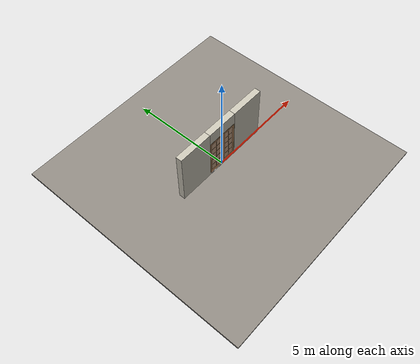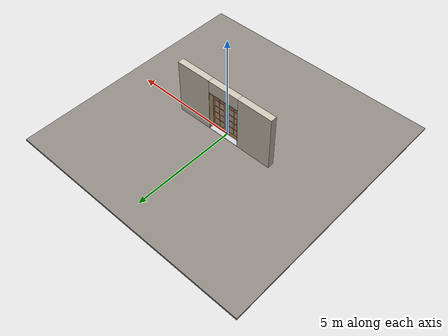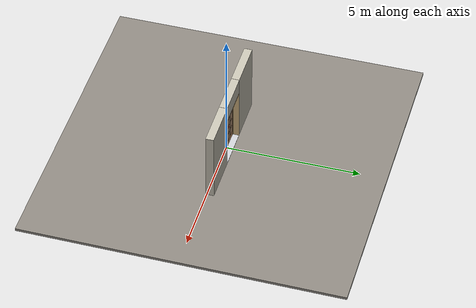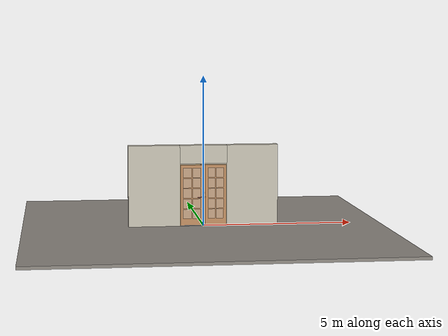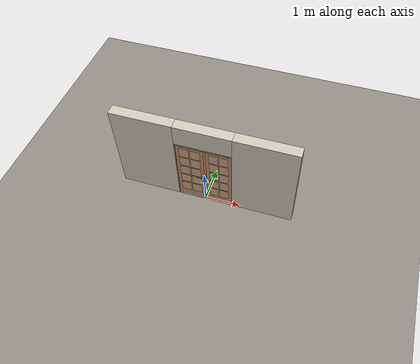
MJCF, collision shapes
<?xml version="1.0" ?>
<mujoco model="db0534_swing_double_full">
  <compiler angle="radian" meshdir="../../hardware" texturedir="../../textures" autolimits="true" inertiafromgeom="false"/>
  <option timestep="0.002" integrator="implicitfast" cone="elliptic" impratio="10" noslip_iterations="3">
    <flag multiccd="enable"/>
  </option>
  <size memory="16M"/>
  <default>
    <geom condim="4" solref="0.005 1" solimp="0.95 0.99 0.001"/>
    <joint solreflimit="0.005 1" solimplimit="0.95 0.99 0.001"/>
    <tendon solreflimit="0.005 1"/>
    <equality solref="0.002 1"/>
  </default>
  <visual>
    <headlight ambient="0.4 0.4 0.4" diffuse="0.7 0.7 0.7" specular="0.2 0.2 0.2"/>
    <quality shadowsize="4096"/>
    <map znear="0.01" zfar="60"/>
  </visual>
  <asset>
    <mesh name="hinge_e22b26c0c1" file="hinge_e22b26c0c1.obj"/>
    <mesh name="hinge_jamb_e1d088f8dc" file="hinge_jamb_e1d088f8dc.obj"/>
    <mesh name="lever_9f02b544cf" file="lever_9f02b544cf.obj"/>
    <material name="mat_floor" rgba="0.55 0.53 0.5 1" specular="0.2" shininess="0.15" reflectance="0"/>
    <material name="mat_wall" rgba="0.78 0.76 0.7 1" specular="0.2" shininess="0.1" reflectance="0"/>
    <material name="mat_leaf_a" rgba="0.75 0.55 0.38 1" specular="0.2" shininess="0.45" reflectance="0"/>
    <material name="mat_glass" rgba="0.85 0.92 0.95 0.25" specular="0.2" shininess="0.95" reflectance="0.1"/>
    <material name="mat_hinge" rgba="0.65 0.66 0.68 1" specular="0.74" shininess="0.5" reflectance="0.36"/>
    <material name="mat_op_nickel_satin" rgba="0.72 0.7 0.66 1" specular="0.8" shininess="0.65" reflectance="0.4"/>
    <material name="mat_trim" rgba="0.85 0.66 0.3 1" specular="0.8" shininess="0.75" reflectance="0.4"/>
    <material name="mat_bolt" rgba="0.85 0.66 0.3 1" specular="0.8" shininess="0.75" reflectance="0.4"/>
    <material name="mat_deadbolt" rgba="0.85 0.66 0.3 1" specular="0.8" shininess="0.75" reflectance="0.4"/>
    <material name="mat_leaf_b" rgba="0.75 0.55 0.38 1" specular="0.2" shininess="0.45" reflectance="0"/>
    <material name="mat_frame" rgba="0.82 0.7 0.5 1" specular="0.2" shininess="0.45" reflectance="0"/>
    <material name="mat_threshold" rgba="0.8 0.81 0.83 1" specular="0.8" shininess="0.6" reflectance="0.4"/>
    <texture name="skybox" type="skybox" builtin="gradient" rgb1="0.6 0.7 0.85" rgb2="0.9 0.92 0.95" width="256" height="256"/>
  </asset>
  <worldbody>
    <light name="sun" pos="1.5 -2.5 4" dir="-0.3 0.5 -0.8" directional="true" diffuse="0.8 0.8 0.8" specular="0.3 0.3 0.3" castshadow="true"/>
    <light name="fill" pos="-1.5 2.5 3" dir="0.3 -0.5 -0.7" directional="true" diffuse="0.35 0.35 0.4" castshadow="false"/>
    <camera name="robot_view" pos="0 -2.434187 1.734312" xyaxes="1 0 0 0 0.26963 0.962964" fovy="52"/>
    <camera name="far_view" pos="0 2.650187 1.734312" xyaxes="-1 0 0 0 -0.26963 0.962964" fovy="52"/>
    <camera name="iso" pos="-1.932062 -2.027438 2.141063" xyaxes="0.741536 -0.670913 0 0.242917 0.268487 0.932151" fovy="46"/>
    <camera name="detail_handle" pos="0.0085 -0.877 1.245" xyaxes="0.97561 0.219512 0 -0.070934 0.315262 0.94635" fovy="38"/>
    <geom name="floor" type="box" size="6 6 0.05" pos="0 0 -0.05" material="mat_floor" group="0" contype="1" conaffinity="1" friction="0.8 0.005 0.0001" density="2400"/>
    <geom name="wall_left" type="box" size="0.85725 0.15 1.35" pos="-1.64275 0.108 1.35" material="mat_wall" group="0" contype="1" conaffinity="1" friction="0.6 0.005 0.0001" density="800"/>
    <geom name="wall_right" type="box" size="0.85725 0.15 1.35" pos="1.64275 0.108 1.35" material="mat_wall" group="0" contype="1" conaffinity="1" friction="0.6 0.005 0.0001" density="800"/>
    <geom name="wall_header" type="box" size="0.7855 0.15 0.303" pos="0 0.108 2.397" material="mat_wall" group="0" contype="1" conaffinity="1" friction="0.6 0.005 0.0001" density="800"/>
    <geom name="hinge_0_jamb" type="mesh" mesh="hinge_jamb_e1d088f8dc" pos="-0.7635 -0.029 0.267" material="mat_hinge" group="1" contype="0" conaffinity="0" density="7850"/>
    <geom name="hinge_1_jamb" type="mesh" mesh="hinge_jamb_e1d088f8dc" pos="-0.7635 -0.029 1.029" material="mat_hinge" group="1" contype="0" conaffinity="0" density="7850"/>
    <geom name="hinge_2_jamb" type="mesh" mesh="hinge_jamb_e1d088f8dc" pos="-0.7635 -0.029 1.861" material="mat_hinge" group="1" contype="0" conaffinity="0" density="7850"/>
    <geom name="hinge_0_jamb_2" type="mesh" mesh="hinge_jamb_e1d088f8dc" pos="0.7635 -0.029 0.267" quat="0 0 1 0" material="mat_hinge" group="1" contype="0" conaffinity="0" density="7850"/>
    <geom name="hinge_1_jamb_2" type="mesh" mesh="hinge_jamb_e1d088f8dc" pos="0.7635 -0.029 1.029" quat="0 0 1 0" material="mat_hinge" group="1" contype="0" conaffinity="0" density="7850"/>
    <geom name="hinge_2_jamb_2" type="mesh" mesh="hinge_jamb_e1d088f8dc" pos="0.7635 -0.029 1.861" quat="0 0 1 0" material="mat_hinge" group="1" contype="0" conaffinity="0" density="7850"/>
    <geom name="jamb_l" type="box" size="0.0095 0.15 1.0225" pos="-0.776 0.108 1.0225" material="mat_frame" group="0" contype="1" conaffinity="1" friction="0.6 0.005 0.0001" density="300"/>
    <geom name="jamb_r" type="box" size="0.0095 0.15 1.0225" pos="0.776 0.108 1.0225" material="mat_frame" group="0" contype="1" conaffinity="1" friction="0.6 0.005 0.0001" density="300"/>
    <geom name="jamb_head" type="box" size="0.7855 0.15 0.0095" pos="0 0.108 2.0545" material="mat_frame" group="0" contype="1" conaffinity="1" friction="0.6 0.005 0.0001" density="300"/>
    <geom name="head_stud" type="box" size="0.7855 0.15 0.015" pos="0 0.108 2.079" material="mat_wall" group="0" contype="1" conaffinity="1" friction="0.6 0.005 0.0001" density="500"/>
    <geom name="stop_l" type="box" size="0.015 0.006 1.0225" pos="-0.7515 0.0285 1.0225" material="mat_frame" group="0" contype="1" conaffinity="1" friction="0.6 0.005 0.0001" density="300"/>
    <geom name="stop_r" type="box" size="0.015 0.006 1.0225" pos="0.7515 0.0285 1.0225" material="mat_frame" group="0" contype="1" conaffinity="1" friction="0.6 0.005 0.0001" density="300"/>
    <geom name="stop_head" type="box" size="0.7665 0.006 0.015" pos="0 0.0285 2.03" material="mat_frame" group="0" contype="1" conaffinity="1" friction="0.6 0.005 0.0001" density="300"/>
    <geom name="threshold" type="box" size="0.7855 0.15 0.0065" pos="0 0.108 0.0065" material="mat_threshold" group="0" contype="1" conaffinity="1" friction="0.5 0.005 0.0001" density="2700"/>
    <site name="approach_point" pos="0 -1.5 0" quat="1 0 0 0" size="0.05" rgba="0.2 0.9 0.2 0.5" group="4"/>
    <site name="goal_point" pos="0 1.5 0" quat="1 0 0 0" size="0.05" rgba="0.2 0.9 0.2 0.5" group="4"/>
    <site name="door_plane_center" pos="0 0 1.0225" quat="1 0 0 0" size="0.02" rgba="0.2 0.9 0.2 0.5" group="4"/>
    <site name="approach_point_2" pos="0 -1.5 0" quat="1 0 0 0" size="0.05" rgba="0.2 0.9 0.2 0.5" group="4"/>
    <site name="goal_point_2" pos="0 1.5 0" quat="1 0 0 0" size="0.05" rgba="0.2 0.9 0.2 0.5" group="4"/>
    <site name="door_plane_center_2" pos="0 0 1.0225" quat="1 0 0 0" size="0.02" rgba="0.2 0.9 0.2 0.5" group="4"/>
    <site name="approach_point_3" pos="0 -1.5 0" quat="1 0 0 0" size="0.05" rgba="0.2 0.9 0.2 0.5" group="4"/>
    <site name="goal_point_3" pos="0 1.5 0" quat="1 0 0 0" size="0.05" rgba="0.2 0.9 0.2 0.5" group="4"/>
    <site name="door_plane_center_3" pos="0 0 1.0225" quat="1 0 0 0" size="0.02" rgba="0.2 0.9 0.2 0.5" group="4"/>
    <body name="leaf_a" pos="-0.7665 0 0">
      <inertial pos="0.367295 -0.000815 1.030226" mass="29.508687" quat="-0.49892 0.501726 -0.498244 -0.5011" diaginertia="1.558965285 10.167788191 11.716309451"/>
      <joint name="leaf_a_hinge" type="hinge" axis="0 0 -1" pos="0.003 -0.029 0" limited="true" range="0 1.570796" solreflimit="0.02 1" damping="0.173726" frictionloss="6.861427" armature="0.02"/>
      <geom name="leaf_a_slab" type="box" size="0.381 0.022 1.012" pos="0.384 0 1.029" material="mat_leaf_a" group="0" contype="1" conaffinity="1" friction="0.35 0.005 0.0001" density="1"/>
      <geom name="leaf_a_glass_0" type="box" size="0.138 0.0228 0.158016" pos="0.231 0 0.397656" material="mat_glass" group="1" contype="0" conaffinity="0" density="1"/>
      <geom name="leaf_a_glass_1" type="box" size="0.138 0.0228 0.158016" pos="0.537 0 0.397656" material="mat_glass" group="1" contype="0" conaffinity="0" density="1"/>
      <geom name="leaf_a_glass_2" type="box" size="0.138 0.0228 0.158016" pos="0.231 0 0.743688" material="mat_glass" group="1" contype="0" conaffinity="0" density="1"/>
      <geom name="leaf_a_glass_3" type="box" size="0.138 0.0228 0.158016" pos="0.537 0 0.743688" material="mat_glass" group="1" contype="0" conaffinity="0" density="1"/>
      <geom name="leaf_a_glass_4" type="box" size="0.138 0.0228 0.158016" pos="0.231 0 1.08972" material="mat_glass" group="1" contype="0" conaffinity="0" density="1"/>
      <geom name="leaf_a_glass_5" type="box" size="0.138 0.0228 0.158016" pos="0.537 0 1.08972" material="mat_glass" group="1" contype="0" conaffinity="0" density="1"/>
      <geom name="leaf_a_glass_6" type="box" size="0.138 0.0228 0.158016" pos="0.231 0 1.435752" material="mat_glass" group="1" contype="0" conaffinity="0" density="1"/>
      <geom name="leaf_a_glass_7" type="box" size="0.138 0.0228 0.158016" pos="0.537 0 1.435752" material="mat_glass" group="1" contype="0" conaffinity="0" density="1"/>
      <geom name="leaf_a_glass_8" type="box" size="0.138 0.0228 0.158016" pos="0.231 0 1.781784" material="mat_glass" group="1" contype="0" conaffinity="0" density="1"/>
      <geom name="leaf_a_glass_9" type="box" size="0.138 0.0228 0.158016" pos="0.537 0 1.781784" material="mat_glass" group="1" contype="0" conaffinity="0" density="1"/>
      <geom name="hinge_0" type="mesh" mesh="hinge_e22b26c0c1" pos="0.003 -0.029 0.267" material="mat_hinge" group="1" contype="0" conaffinity="0" density="7850"/>
      <geom name="hinge_1" type="mesh" mesh="hinge_e22b26c0c1" pos="0.003 -0.029 1.029" material="mat_hinge" group="1" contype="0" conaffinity="0" density="7850"/>
      <geom name="hinge_2" type="mesh" mesh="hinge_e22b26c0c1" pos="0.003 -0.029 1.861" material="mat_hinge" group="1" contype="0" conaffinity="0" density="7850"/>
      <geom name="leaf_a_latch_bolt_faceplate" type="box" size="0.0006 0.01235 0.0267" pos="0.7644 0 0.965" material="mat_bolt" group="1" contype="0" conaffinity="0" density="8500"/>
      <geom name="leaf_a_deadbolt_faceplate" type="box" size="0.0006 0.014 0.0245" pos="0.7644 0 1.105" material="mat_deadbolt" group="1" contype="0" conaffinity="0" density="8500"/>
      <site name="leaf_a_edge_mid" pos="0.765 0 1.012" quat="1 0 0 0" size="0.02" rgba="0.2 0.9 0.2 0.5" group="4"/>
      <body name="leaf_a_handle" pos="0.695 0 0.965">
        <inertial pos="-0.028544 0 0" mass="0.978187" quat="0 0.707107 0.707107 0" diaginertia="0.001772047 0.003604455 0.005198299"/>
        <joint name="leaf_a_handle_hinge" type="hinge" axis="0 -1 0" limited="true" range="0 0.96" damping="0.245624" frictionloss="0.048" stiffness="1.2" springref="-0.458333" armature="0.01"/>
        <geom name="leaf_a_handle_spindle" type="cylinder" size="0.006 0.03" pos="0 0 0" quat="0.707107 -0.707107 0 0" material="mat_op_nickel_satin" group="1" contype="0" conaffinity="0" density="7850"/>
        <geom name="leaf_a_handle_lever_n" type="mesh" mesh="lever_9f02b544cf" pos="0 -0.022 0" quat="0.707107 0.707107 0 0" material="mat_op_nickel_satin" group="1" contype="0" conaffinity="0" density="3000"/>
        <geom name="leaf_a_handle_lever_col_n" type="capsule" size="0.0095 0.053" pos="-0.0625 -0.077 0" quat="0.707107 0 -0.707107 0" material="mat_op_nickel_satin" group="3" contype="1" conaffinity="1" rgba="0.8 0.3 0.3 0.25" friction="0.7 0.01 0.0001" density="3000"/>
        <geom name="leaf_a_handle_hub_col_n" type="cylinder" size="0.012 0.022" pos="0 -0.052 0" quat="0.707107 -0.707107 0 0" material="mat_op_nickel_satin" group="3" contype="1" conaffinity="1" rgba="0.8 0.3 0.3 0.25" friction="0.6 0.005 0.0001" density="3000"/>
        <geom name="leaf_a_handle_lever_p" type="mesh" mesh="lever_9f02b544cf" pos="0 0.022 0" quat="-0.707107 0.707107 0 0" material="mat_op_nickel_satin" group="1" contype="0" conaffinity="0" density="3000"/>
        <geom name="leaf_a_handle_lever_col_p" type="capsule" size="0.0095 0.053" pos="-0.0625 0.077 0" quat="0.707107 0 -0.707107 0" material="mat_op_nickel_satin" group="3" contype="1" conaffinity="1" rgba="0.8 0.3 0.3 0.25" friction="0.7 0.01 0.0001" density="3000"/>
        <geom name="leaf_a_handle_hub_col_p" type="cylinder" size="0.012 0.022" pos="0 0.052 0" quat="0.707107 -0.707107 0 0" material="mat_op_nickel_satin" group="3" contype="1" conaffinity="1" rgba="0.8 0.3 0.3 0.25" friction="0.6 0.005 0.0001" density="3000"/>
        <site name="leaf_a_handle_grip_n" pos="-0.1 -0.077 0" quat="1 0 0 0" size="0.012" rgba="0.2 0.9 0.2 0.5" group="4"/>
        <site name="leaf_a_handle_grip_p" pos="-0.1 0.077 0" quat="1 0 0 0" size="0.012" rgba="0.2 0.9 0.2 0.5" group="4"/>
      </body>
      <body name="leaf_a_latch_bolt" pos="0.765 0 0.965">
        <inertial pos="-0.00865 0 0" mass="0.041419" quat="0.92388 -0.382683 0 0" diaginertia="0.000000798 0.000005598 0.000005598"/>
        <joint name="leaf_a_latch_bolt_slide" type="slide" axis="-1 0 0" limited="true" range="0 0.0127" damping="2" frictionloss="0.3" stiffness="300" springref="-0.008333" armature="0.1"/>
        <geom name="leaf_a_latch_bolt_capsule" type="capsule" size="0.00635 0.015" pos="-0.00865 0 0" quat="0.707107 0 0.707107 0" material="mat_bolt" group="0" contype="1" conaffinity="1" friction="0.2 0.005 0.0001" density="8500"/>
      </body>
      <body name="leaf_a_deadbolt" pos="0.765 0 1.105">
        <inertial pos="-0.0023 0 0" mass="0.18836" quat="0 0 0.707107 0.707107" diaginertia="0.000013829 0.000052194 0.000057986"/>
        <geom name="leaf_a_deadbolt_box" type="box" size="0.0277 0.008 0.0125" pos="-0.0023 0 0" material="mat_deadbolt" group="0" contype="1" conaffinity="1" friction="0.3 0.005 0.0001" density="8500"/>
      </body>
    </body>
    <body name="leaf_b" pos="0.7665 0 0">
      <inertial pos="-0.338105 -0.000817 1.030199" mass="28.33557" quat="0.501256 -0.498148 0.501822 0.498764" diaginertia="1.268116846 9.780878944 11.038955602"/>
      <joint name="leaf_b_hinge" type="hinge" axis="0 0 1" pos="-0.003 -0.029 0" limited="true" range="0 0.001" solreflimit="0.02 1" damping="0.173726" frictionloss="6.861427" armature="0.02"/>
      <geom name="leaf_b_edge_965_wall_n" type="box" size="0.03 0.007075 0.0167" pos="-0.735 0.014925 0.965" material="mat_leaf_b" group="0" contype="1" conaffinity="1" friction="0.6 0.005 0.0001" density="1"/>
      <geom name="leaf_b_edge_965_wall_p" type="box" size="0.03 0.008 0.0167" pos="-0.735 -0.01585 0.965" material="mat_leaf_b" group="0" contype="1" conaffinity="1" friction="0.6 0.005 0.0001" density="1"/>
      <geom name="leaf_b_edge_965_ramp" type="box" size="0.03 0.01649 0.0167" pos="-0.730861 -0.026388 0.965" quat="0.977148 0 0 0.212558" material="mat_leaf_b" group="0" contype="1" conaffinity="1" friction="0.12 0.005 0.0001" density="1"/>
      <geom name="leaf_b_edge_965_back" type="box" size="0.02165 0.00785 0.0167" pos="-0.72665 0 0.965" material="mat_leaf_b" group="0" contype="1" conaffinity="1" friction="0.6 0.005 0.0001" density="1"/>
      <geom name="leaf_b_edge_1105_wall_n" type="box" size="0.03 0.00625 0.0155" pos="-0.735 0.01575 1.105" material="mat_leaf_b" group="0" contype="1" conaffinity="1" friction="0.6 0.005 0.0001" density="1"/>
      <geom name="leaf_b_edge_1105_wall_p" type="box" size="0.03 0.00625 0.0155" pos="-0.735 -0.01575 1.105" material="mat_leaf_b" group="0" contype="1" conaffinity="1" friction="0.6 0.005 0.0001" density="1"/>
      <geom name="leaf_b_edge_1105_back" type="box" size="0.0153 0.0095 0.0155" pos="-0.7203 0 1.105" material="mat_leaf_b" group="0" contype="1" conaffinity="1" friction="0.6 0.005 0.0001" density="1"/>
      <geom name="leaf_b_edge_seg_0" type="box" size="0.03 0.022 0.46565" pos="-0.735 0 0.48265" material="mat_leaf_b" group="0" contype="1" conaffinity="1" friction="0.6 0.005 0.0001" density="1"/>
      <geom name="leaf_b_edge_seg_1" type="box" size="0.03 0.022 0.0539" pos="-0.735 0 1.0356" material="mat_leaf_b" group="0" contype="1" conaffinity="1" friction="0.6 0.005 0.0001" density="1"/>
      <geom name="leaf_b_edge_seg_2" type="box" size="0.03 0.022 0.46025" pos="-0.735 0 1.58075" material="mat_leaf_b" group="0" contype="1" conaffinity="1" friction="0.6 0.005 0.0001" density="1"/>
      <geom name="leaf_b_slab" type="box" size="0.351 0.022 1.012" pos="-0.354 0 1.029" material="mat_leaf_b" group="0" contype="1" conaffinity="1" friction="0.35 0.005 0.0001" density="1"/>
      <geom name="leaf_b_glass_0" type="box" size="0.123 0.0228 0.158016" pos="-0.216 0 0.397656" material="mat_glass" group="1" contype="0" conaffinity="0" density="1"/>
      <geom name="leaf_b_glass_1" type="box" size="0.123 0.0228 0.158016" pos="-0.492 0 0.397656" material="mat_glass" group="1" contype="0" conaffinity="0" density="1"/>
      <geom name="leaf_b_glass_2" type="box" size="0.123 0.0228 0.158016" pos="-0.216 0 0.743688" material="mat_glass" group="1" contype="0" conaffinity="0" density="1"/>
      <geom name="leaf_b_glass_3" type="box" size="0.123 0.0228 0.158016" pos="-0.492 0 0.743688" material="mat_glass" group="1" contype="0" conaffinity="0" density="1"/>
      <geom name="leaf_b_glass_4" type="box" size="0.123 0.0228 0.158016" pos="-0.216 0 1.08972" material="mat_glass" group="1" contype="0" conaffinity="0" density="1"/>
      <geom name="leaf_b_glass_5" type="box" size="0.123 0.0228 0.158016" pos="-0.492 0 1.08972" material="mat_glass" group="1" contype="0" conaffinity="0" density="1"/>
      <geom name="leaf_b_glass_6" type="box" size="0.123 0.0228 0.158016" pos="-0.216 0 1.435752" material="mat_glass" group="1" contype="0" conaffinity="0" density="1"/>
      <geom name="leaf_b_glass_7" type="box" size="0.123 0.0228 0.158016" pos="-0.492 0 1.435752" material="mat_glass" group="1" contype="0" conaffinity="0" density="1"/>
      <geom name="leaf_b_glass_8" type="box" size="0.123 0.0228 0.158016" pos="-0.216 0 1.781784" material="mat_glass" group="1" contype="0" conaffinity="0" density="1"/>
      <geom name="leaf_b_glass_9" type="box" size="0.123 0.0228 0.158016" pos="-0.492 0 1.781784" material="mat_glass" group="1" contype="0" conaffinity="0" density="1"/>
      <geom name="hinge_0_2" type="mesh" mesh="hinge_e22b26c0c1" pos="-0.003 -0.029 0.267" quat="0 0 1 0" material="mat_hinge" group="1" contype="0" conaffinity="0" density="7850"/>
      <geom name="hinge_1_2" type="mesh" mesh="hinge_e22b26c0c1" pos="-0.003 -0.029 1.029" quat="0 0 1 0" material="mat_hinge" group="1" contype="0" conaffinity="0" density="7850"/>
      <geom name="hinge_2_2" type="mesh" mesh="hinge_e22b26c0c1" pos="-0.003 -0.029 1.861" quat="0 0 1 0" material="mat_hinge" group="1" contype="0" conaffinity="0" density="7850"/>
      <site name="leaf_b_edge_mid" pos="-0.765 0 1.012" quat="1 0 0 0" size="0.02" rgba="0.2 0.9 0.2 0.5" group="4"/>
    </body>
  </worldbody>
  <tendon>
    <fixed name="leaf_a_latch_bolt_coupling" limited="true" range="0 10">
      <joint joint="leaf_a_latch_bolt_slide" coef="1"/>
      <joint joint="leaf_a_handle_hinge" coef="-0.013956"/>
    </fixed>
  </tendon>
  <sensor>
    <jointpos name="leaf_a_hinge_pos" joint="leaf_a_hinge"/>
    <jointvel name="leaf_a_hinge_vel" joint="leaf_a_hinge"/>
    <jointpos name="leaf_a_handle_hinge_pos" joint="leaf_a_handle_hinge"/>
    <jointvel name="leaf_a_handle_hinge_vel" joint="leaf_a_handle_hinge"/>
    <jointpos name="leaf_a_latch_bolt_slide_pos" joint="leaf_a_latch_bolt_slide"/>
    <jointvel name="leaf_a_latch_bolt_slide_vel" joint="leaf_a_latch_bolt_slide"/>
    <jointpos name="leaf_b_hinge_pos" joint="leaf_b_hinge"/>
    <jointvel name="leaf_b_hinge_vel" joint="leaf_b_hinge"/>
  </sensor>
</mujoco>
